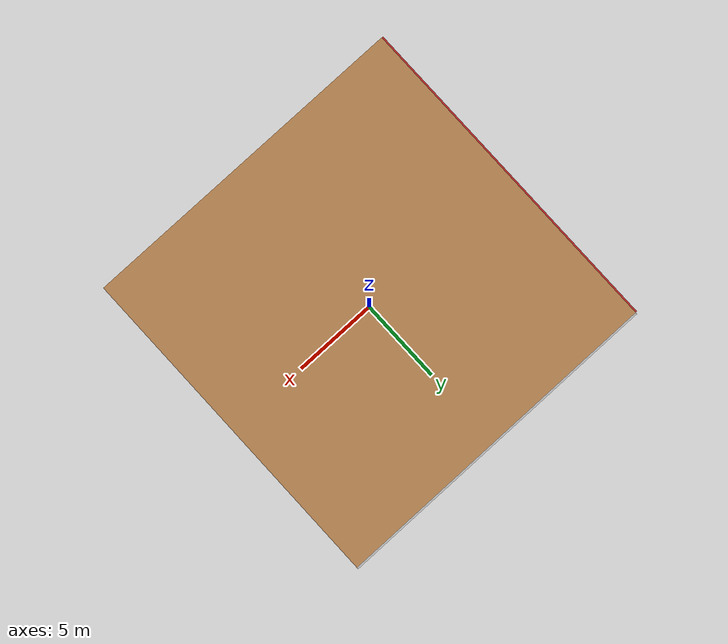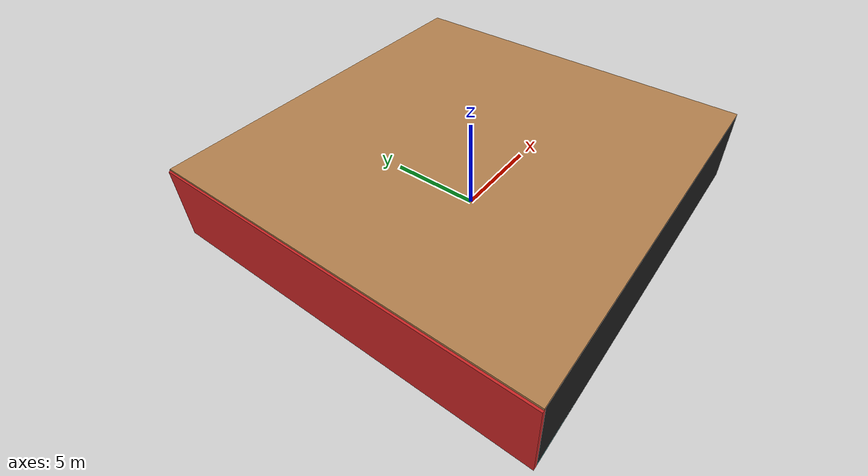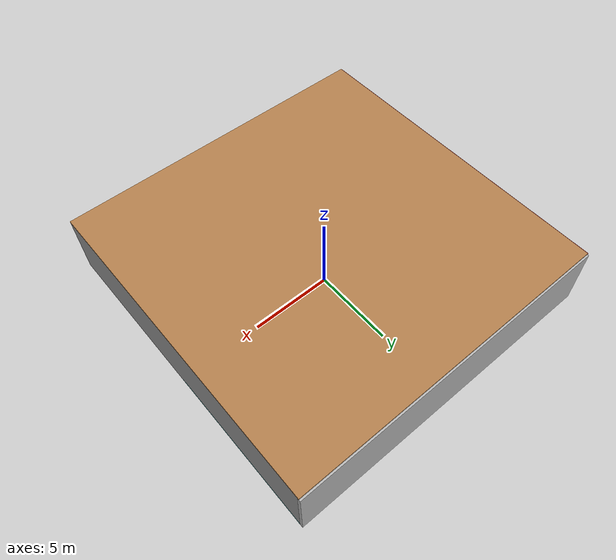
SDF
<sdf version="1.4">
 <world name="default">
  <physics type="ode">
   <max_step_size>0.001</max_step_size>
   <real_time_factor>1</real_time_factor>
   <real_time_update_rate>1000</real_time_update_rate>
   <gravity>0 0 -9.8</gravity>
  </physics>
  <scene><ambient>0.4 0.4 0.4 1</ambient><background>0.7 0.7 0.7 1</background><shadows>1</shadows></scene>
  <model name="Surrounding">
   <static>1</static>
   <link name="Ceiling">
    <collision name="Ceiling_Collision"><geometry><box><size>20 20 0.1</size></box></geometry></collision>
    <visual name="Ceiling_Visual">
     <geometry><box><size>20 20 0.1</size></box></geometry>
     <material>
      <script><uri>file://media/materials/scripts/gazebo.material</uri><name>Gazebo/WoodFloor</name></script>
     </material>
    </visual>
    <pose>0 0 4.05 0 0 0</pose>
   </link>
   <link name="Wall_South">
    <collision name="Wall_South_Collision">
     <geometry><box><size>20 0 4</size></box></geometry>
     <pose>0 0 2 0 -0 0</pose>
    </collision>
    <visual name="Wall_South_Visual">
     <pose>0 0 2 0 -0 0</pose>
     <geometry><box><size>20 0 4</size></box></geometry>
     <material>
      <script><uri>file://media/materials/scripts/gazebo.material</uri><name>Gazebo/FlatBlack</name></script>
     </material>
    </visual>
    <velocity_decay><linear>0</linear><angular>0</angular></velocity_decay>
    <pose>0 -10 0 0 -0 0</pose>
   </link>
   <link name="Wall_East">
    <collision name="Wall_21_Collision">
     <geometry><box><size>20 0 4</size></box></geometry>
     <pose>0 0 2 0 -0 0</pose>
    </collision>
    <visual name="Wall_21_Visual">
     <pose>0 0 2 0 -0 0</pose>
     <geometry><box><size>20 0 4</size></box></geometry>
     <material>
      <script><uri>file://media/materials/scripts/gazebo.material</uri><name>Gazebo/GreyGradientSky</name></script>
     </material>
    </visual>
    <velocity_decay><linear>0</linear><angular>0</angular></velocity_decay>
    <pose>10 0 0 0 -0 1.5708</pose>
   </link>
   <link name="Wall_North">
    <collision name="Wall_22_Collision">
     <geometry><box><size>20 0.2 4</size></box></geometry>
     <pose>0 0 2 0 -0 0</pose>
    </collision>
    <visual name="Wall_22_Visual">
     <pose>0 0 2 0 -0 0</pose>
     <geometry><box><size>20 0.2 4</size></box></geometry>
     <material>
      <script><uri>file://media/materials/scripts/gazebo.material</uri><name>Gazebo/PioneerBody</name></script>
     </material>
    </visual>
    <velocity_decay><linear>0</linear><angular>0</angular></velocity_decay>
    <pose>0 10 0 0 -0 0</pose>
   </link>
   <link name="Wall_West">
    <collision name="Wall_23_Collision">
     <geometry><box><size>20 0.2 4</size></box></geometry>
     <pose>0 0 2 0 -0 0</pose>
    </collision>
    <visual name="Wall_23_Visual">
     <pose>0 0 2 0 -0 0</pose>
     <geometry><box><size>20 0.2 4</size></box></geometry>
     <material>
      <script><uri>file://media/materials/scripts/gazebo.material</uri><name>Gazebo/Red</name></script>
     </material>
    </visual>
    <velocity_decay><linear>0</linear><angular>0</angular></velocity_decay>
    <pose>-10 0 0 0 0 -1.5708</pose>
   </link>
   <link name="Ground_link">
    <collision name="collision">
     <pose>0 0 .05 0 -0 0</pose>
     <geometry><box><size>20 20 0.1</size></box></geometry>
    </collision>
    <visual name="visual">
     <pose>0 0 .05 0 -0 0</pose>
     <geometry><box><size>20 20 0.1</size></box></geometry>
     <material>
      <script><uri>file://media/materials/scripts/gazebo.material</uri><name>Gazebo/Turquoise</name></script>
     </material>
    </visual>
   </link>
   <static>1</static>
  </model>
  <spherical_coordinates>
   <surface_model>EARTH_WGS84</surface_model>
   <latitude_deg>0</latitude_deg>
   <longitude_deg>0</longitude_deg>
   <elevation>0</elevation>
   <heading_deg>0</heading_deg>
  </spherical_coordinates>
  <light name="lightball_0" type="diffuse">
   <diffuse>0.8 0.8 0.8 1</diffuse>
   <specular>0.2 0.2 0.2 1</specular>
   <attenuation>
    <range>100</range>
    <constant>0.7</constant>
    <linear>0.01</linear>
    <quadratic>0.001</quadratic>
   </attenuation>
   <direction>-0.5 0.1 -0.9</direction>
   <pose>1.28168614129 -4.45427950227 0.509065800076 0 0 0</pose>
  </light>
  <light name="lightball_1" type="diffuse">
   <diffuse>0.8 0.8 0.8 1</diffuse>
   <specular>0.2 0.2 0.2 1</specular>
   <attenuation>
    <range>100</range>
    <constant>0.7</constant>
    <linear>0.01</linear>
    <quadratic>0.001</quadratic>
   </attenuation>
   <direction>-0.5 0.1 -0.9</direction>
   <pose>9.54263853283 -7.60533966594 0.869854715855 0 0 0</pose>
  </light>
  <light name="lightball_2" type="diffuse">
   <diffuse>0.8 0.8 0.8 1</diffuse>
   <specular>0.2 0.2 0.2 1</specular>
   <attenuation>
    <range>100</range>
    <constant>0.7</constant>
    <linear>0.01</linear>
    <quadratic>0.001</quadratic>
   </attenuation>
   <direction>-0.5 0.1 -0.9</direction>
   <pose>-0.950396624235 -8.09978980218 2.84205674894 0 0 0</pose>
  </light>
  <light name="lightball_3" type="diffuse">
   <diffuse>0.8 0.8 0.8 1</diffuse>
   <specular>0.2 0.2 0.2 1</specular>
   <attenuation>
    <range>100</range>
    <constant>0.7</constant>
    <linear>0.01</linear>
    <quadratic>0.001</quadratic>
   </attenuation>
   <direction>-0.5 0.1 -0.9</direction>
   <pose>0.722712494174 -0.821605269758 3.50917148082 0 0 0</pose>
  </light>
  <light name="lightball_4" type="diffuse">
   <diffuse>0.8 0.8 0.8 1</diffuse>
   <specular>0.2 0.2 0.2 1</specular>
   <attenuation>
    <range>100</range>
    <constant>0.7</constant>
    <linear>0.01</linear>
    <quadratic>0.001</quadratic>
   </attenuation>
   <direction>-0.5 0.1 -0.9</direction>
   <pose>-0.70403265862 7.22471306789 2.18893829111 0 0 0</pose>
  </light>
  <light name="lightball_5" type="diffuse">
   <diffuse>0.8 0.8 0.8 1</diffuse>
   <specular>0.2 0.2 0.2 1</specular>
   <attenuation>
    <range>100</range>
    <constant>0.7</constant>
    <linear>0.01</linear>
    <quadratic>0.001</quadratic>
   </attenuation>
   <direction>-0.5 0.1 -0.9</direction>
   <pose>-6.60776847298 -7.02946943514 3.31957502777 0 0 0</pose>
  </light>
  <light name="lightball_6" type="diffuse">
   <diffuse>0.8 0.8 0.8 1</diffuse>
   <specular>0.2 0.2 0.2 1</specular>
   <attenuation>
    <range>100</range>
    <constant>0.7</constant>
    <linear>0.01</linear>
    <quadratic>0.001</quadratic>
   </attenuation>
   <direction>-0.5 0.1 -0.9</direction>
   <pose>-4.91488139561 6.62030146537 0.868542220676 0 0 0</pose>
  </light>
  <light name="lightball_7" type="diffuse">
   <diffuse>0.8 0.8 0.8 1</diffuse>
   <specular>0.2 0.2 0.2 1</specular>
   <attenuation>
    <range>100</range>
    <constant>0.7</constant>
    <linear>0.01</linear>
    <quadratic>0.001</quadratic>
   </attenuation>
   <direction>-0.5 0.1 -0.9</direction>
   <pose>4.46680959745 5.2600616129 1.96727624346 0 0 0</pose>
  </light>
  <light name="lightball_8" type="diffuse">
   <diffuse>0.8 0.8 0.8 1</diffuse>
   <specular>0.2 0.2 0.2 1</specular>
   <attenuation>
    <range>100</range>
    <constant>0.7</constant>
    <linear>0.01</linear>
    <quadratic>0.001</quadratic>
   </attenuation>
   <direction>-0.5 0.1 -0.9</direction>
   <pose>-3.65589875146 -9.03906888532 2.60136849394 0 0 0</pose>
  </light>
  <include><uri>model://cabinet</uri><pose>-8.28602590071 4.69765115558 0 0 0 2.31465896584</pose></include>
  <include>
   <uri>model://textured_shapes</uri>
   <pose>-4.43733552708 0.914500491488 0 0 0 2.4064193628</pose>
  </include>
  <include><uri>model://cabinet</uri><pose>2.17916697745 -1.35325516159 0 0 0 1.29729079828</pose></include>
  <include><uri>model://cabinet</uri><pose>1.82001653969 1.88716398617 0 0 0 1.91334033697</pose></include>
  <include><uri>model://table</uri><pose>4.54639066629 1.51521928722 0 0 0 1.18958568308</pose></include>
 </world>
</sdf>

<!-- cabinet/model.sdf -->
<sdf version="1.5">
  <model name="cabinet">
    <static>true</static>
    <link name="cabinet_bottom_plate">
      <inertial>
        <pose>0 0 -1 0 0 0</pose>
        <inertia>
          <ixx>2.050000</ixx>
          <ixy>0</ixy>
          <ixz>0</ixz>
          <iyy>2.050000</iyy>
          <iyz>0</iyz>
          <izz>2.050000</izz>
        </inertia>
        <mass>25.000000</mass>
      </inertial>
      <collision name="cabinet_bottom_plate_geom">
        <pose>0 0 0.010000 0 0 0</pose>
        <geometry>
          <box>
            <size>0.450000 0.450000 0.020000</size>
          </box>
        </geometry>
      </collision>
      <visual name="cabinet_bottom_plate_geom_visual">
        <pose>0 0 0.010000 0 0 0</pose>
        <geometry>
          <box>
            <size>0.450000 0.450000 0.020000</size>
          </box>
        </geometry>
        <material>
          <script>
            <uri>model://media/materials/scripts/gazebo.material</uri>
            <name>Gazebo/Wood</name>
          </script>
        </material>
      </visual>
      <collision name="cabinet_bottom_plate_geom_cabinet_back_plate">
        <pose>0.235000 0 0.510000 0 0 0</pose>
        <geometry>
          <box>
            <size>0.020000 0.450000 1.020000</size>
          </box>
        </geometry>
      </collision>
      <visual name="cabinet_bottom_plate_geom_cabinet_back_plate_visual">
        <pose>0.235000 0 0.510000 0 0 0</pose>
        <geometry>
          <box>
            <size>0.020000 0.450000 1.020000</size>
          </box>
        </geometry>
        <material>
          <script>
            <uri>model://media/materials/scripts/gazebo.material</uri>
            <name>Gazebo/Wood</name>
          </script>
        </material>
      </visual>
      <collision name="cabinet_bottom_plate_geom_cabinet_left_plate">
        <pose>0 0.235000 0.510000 0 0 0</pose>
        <geometry>
          <box>
            <size>0.450000 0.020000 1.020000</size>
          </box>
        </geometry>
      </collision>
      <visual name="cabinet_bottom_plate_geom_cabinet_left_plate_visual">
        <pose>0 0.235000 0.510000 0 0 0</pose>
        <geometry>
          <box>
            <size>0.450000 0.020000 1.020000</size>
          </box>
        </geometry>
        <material>
          <script>
            <uri>model://media/materials/scripts/gazebo.material</uri>
            <name>Gazebo/Wood</name>
          </script>
        </material>
      </visual>
      <collision name="cabinet_bottom_plate_geom_cabinet_middle_plate">
        <pose>0 0 0.510000 0 0 0</pose>
        <geometry>
          <box>
            <size>0.450000 0.450000 0.020000</size>
          </box>
        </geometry>
      </collision>
      <visual name="cabinet_bottom_plate_geom_cabinet_middle_plate_visual">
        <pose>0 0 0.510000 0 0 0</pose>
        <geometry>
          <box>
            <size>0.450000 0.450000 0.020000</size>
          </box>
        </geometry>
        <material>
          <script>
            <uri>model://media/materials/scripts/gazebo.material</uri>
            <name>Gazebo/Wood</name>
          </script>
        </material>
      </visual>
      <collision name="cabinet_bottom_plate_geom_cabinet_right_plate">
        <pose>0 -0.235000 0.510000 0 0 0</pose>
        <geometry>
          <box>
            <size>0.450000 0.020000 1.020000</size>
          </box>
        </geometry>
      </collision>
      <visual name="cabinet_bottom_plate_geom_cabinet_right_plate_visual">
        <pose>0 -0.235000 0.510000 0 0 0</pose>
        <geometry>
          <box>
            <size>0.450000 0.020000 1.020000</size>
          </box>
        </geometry>
        <material>
          <script>
            <uri>model://media/materials/scripts/gazebo.material</uri>
            <name>Gazebo/Wood</name>
          </script>
        </material>
      </visual>
      <collision name="cabinet_bottom_plate_geom_cabinet_top_plate">
        <pose>0 0 1.010000 0 0 0</pose>
        <geometry>
          <box>
            <size>0.450000 0.450000 0.020000</size>
          </box>
        </geometry>
      </collision>
      <visual name="cabinet_bottom_plate_geom_cabinet_top_plate_visual">
        <pose>0 0 1.010000 0 0 0</pose>
        <geometry>
          <box>
            <size>0.450000 0.450000 0.020000</size>
          </box>
        </geometry>
        <material>
          <script>
            <uri>model://media/materials/scripts/gazebo.material</uri>
            <name>Gazebo/Wood</name>
          </script>
        </material>
      </visual>
    </link>
  </model>
</sdf>

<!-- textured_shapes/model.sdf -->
<sdf version="1.6">
  <model name="textured_shapes">
    <pose>0 0 0.5 0 0 0</pose>
    <link name="box">
      <pose>0 -1.5 0 0 0 0</pose>
      <collision name="collision">
        <geometry>
          <box>
            <size>1 1 1</size>
          </box>
        </geometry>
      </collision>
      <visual name="visual">
        <geometry>
          <box>
            <size>1 1 1</size>
          </box>
        </geometry>
        <material>
          <script>
            <uri>model://../model_source/models/textured_shapes/materials/scripts</uri>
            <uri>model://../model_source/models/textured_shapes/materials/textures</uri>
            <name>TexturedShape/Squares</name>
          </script>
        </material>
      </visual>
    </link>
    <link name="sphere">
      <collision name="collision">
        <geometry>
          <sphere>
            <radius>0.5</radius>
          </sphere>
        </geometry>
      </collision>
      <visual name="visual">
        <geometry>
          <sphere>
            <radius>0.5</radius>
          </sphere>
        </geometry>
        <material>
          <script>
            <uri>model://../model_source/models/textured_shapes/materials/scripts</uri>
            <uri>model://../model_source/models/textured_shapes/materials/textures</uri>
            <name>TexturedShape/Squares</name>
          </script>
        </material>
      </visual>
    </link>
    <link name="cylinder">
      <pose>0 1.5 0 0 0 0</pose>
      <collision name="collision">
        <geometry>
          <cylinder>
            <radius>0.5</radius>
            <length>1</length>
          </cylinder>
        </geometry>
      </collision>
      <visual name="visual">
        <geometry>
          <cylinder>
            <radius>0.5</radius>
            <length>1</length>
          </cylinder>
        </geometry>
        <material>
          <script>
            <uri>model://../model_source/models/textured_shapes/materials/scripts</uri>
            <uri>model://../model_source/models/textured_shapes/materials/textures</uri>
            <name>TexturedShape/Squares</name>
          </script>
        </material>
      </visual>
    </link>
  </model>
</sdf>

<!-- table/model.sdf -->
<sdf version="1.5">
  <model name="table">
    <static>true</static>
    <link name="link">
      <collision name="surface">
        <pose>0 0 1.0 0 0 0</pose>
        <geometry>
          <box>
            <size>1.5 0.8 0.03</size>
          </box>
        </geometry>
        <surface>
          <friction>
            <ode>
              <mu>0.6</mu>
              <mu2>0.6</mu2>
            </ode>
          </friction>
        </surface>
      </collision>
      <visual name="visual1">
        <pose>0 0 1.0 0 0 0</pose>
        <geometry>
          <box>
            <size>1.5 0.8 0.03</size>
          </box>
        </geometry>
        <material>
          <script>
            <uri>model://media/materials/scripts/gazebo.material</uri>
            <name>Gazebo/Wood</name>
          </script>
        </material>
      </visual>
      <collision name="front_left_leg">
        <pose>0.68 0.38 0.5 0 0 0</pose>
        <geometry>
          <cylinder>
            <radius>0.02</radius>
            <length>1.0</length>
          </cylinder>
        </geometry>
      </collision>
      <visual name="front_left_leg">
        <pose>0.68 0.38 0.5 0 0 0</pose>
        <geometry>
          <cylinder>
            <radius>0.02</radius>
            <length>1.0</length>
          </cylinder>
        </geometry>
        <material>
          <script>
            <uri>model://media/materials/scripts/gazebo.material</uri>
            <name>Gazebo/Grey</name>
          </script>
        </material>
      </visual>
      <collision name="front_right_leg">
        <pose>0.68 -0.38 0.5 0 0 0</pose>
        <geometry>
          <cylinder>
            <radius>0.02</radius>
            <length>1.0</length>
          </cylinder>
        </geometry>
      </collision>
      <visual name="front_right_leg">
        <pose>0.68 -0.38 0.5 0 0 0</pose>
        <geometry>
          <cylinder>
            <radius>0.02</radius>
            <length>1.0</length>
          </cylinder>
        </geometry>
        <material>
          <script>
            <uri>model://media/materials/scripts/gazebo.material</uri>
            <name>Gazebo/Grey</name>
          </script>
        </material>
      </visual>
      <collision name="back_right_leg">
        <pose>-0.68 -0.38 0.5 0 0 0</pose>
        <geometry>
          <cylinder>
            <radius>0.02</radius>
            <length>1.0</length>
          </cylinder>
        </geometry>
      </collision>
      <visual name="back_right_leg">
        <pose>-0.68 -0.38 0.5 0 0 0</pose>
        <geometry>
          <cylinder>
            <radius>0.02</radius>
            <length>1.0</length>
          </cylinder>
        </geometry>
        <material>
          <script>
            <uri>model://media/materials/scripts/gazebo.material</uri>
            <name>Gazebo/Grey</name>
          </script>
        </material>
      </visual>
      <collision name="back_left_leg">
        <pose>-0.68 0.38 0.5 0 0 0</pose>
        <geometry>
          <cylinder>
            <radius>0.02</radius>
            <length>1.0</length>
          </cylinder>
        </geometry>
      </collision>
      <visual name="back_left_leg">
        <pose>-0.68 0.38 0.5 0 0 0</pose>
        <geometry>
          <cylinder>
            <radius>0.02</radius>
            <length>1.0</length>
          </cylinder>
        </geometry>
        <material>
          <script>
            <uri>model://media/materials/scripts/gazebo.material</uri>
            <name>Gazebo/Grey</name>
          </script>
        </material>
      </visual>
    </link>
  </model>
</sdf>
